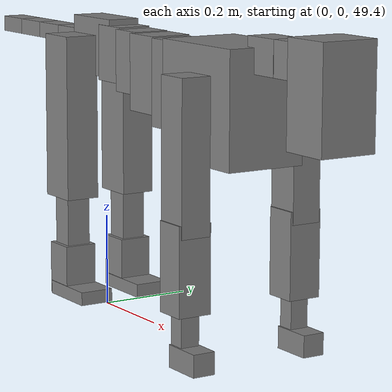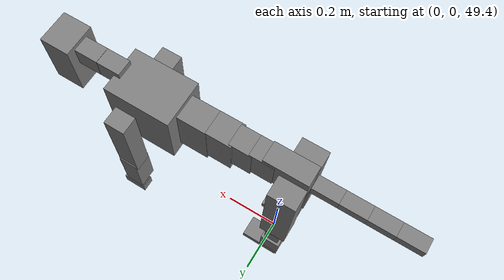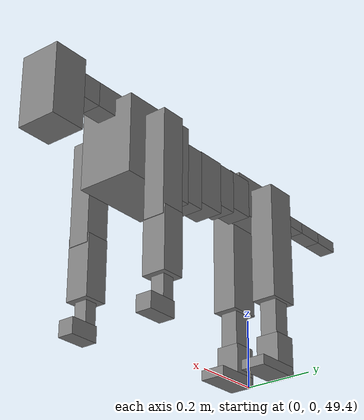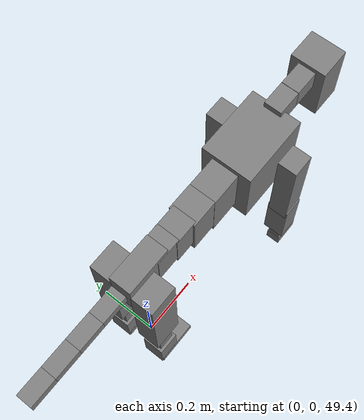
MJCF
<mujoco model="dog">

    <default>
        <joint armature="0.02" stiffness="1" damping="0.2" limited="true"/>
        <geom condim="3" friction="1 0.05 0.05" margin="0.01"/>
        <motor ctrllimited="true" ctrlrange="-1.0 1.0" forcelimited="true" gear="50"/>
    </default>

    <compiler inertiafromgeom="true" angle="radian"/>

    <option timestep="0.016" iterations="50" tolerance="1e-10" solver="Newton" jacobian="dense" cone="pyramidal"/>

    <size nconmax="20000" njmax="60000" nstack="5000000"/>
    <visual>
        <map force="0.1" zfar="30"/>
        <rgba haze="0.15 0.25 0.35 1"/>
        <quality shadowsize="2048"/>
        <global offwidth="800" offheight="800"/>
    </visual>

    <asset>
        <texture type="skybox" builtin="gradient" rgb1="0.3 0.5 0.7" rgb2="0 0 0" width="512" height="512"/>
        <texture name="texplane" type="2d" builtin="checker" rgb1=".2 .3 .4" rgb2=".1 0.15 0.2" width="512" height="512"
                 mark="cross" markrgb=".8 .8 .8"/>
        <texture name="texgeom" type="cube" builtin="flat" mark="cross" width="127" height="1278" rgb1="0.8 0.6 0.4"
                 rgb2="0.8 0.6 0.4" markrgb="1 1 1" random="0.01"/>

        <material name="matplane" reflectance="0.3" texture="texplane" texrepeat="1 1" texuniform="true"/>
        <material name="matgeom" texture="texgeom" texuniform="true" rgba="0.8 0.6 .4 1"/>
    </asset>

    <worldbody>
        <geom name="floor" pos="0 0 0" size="0 0 .25" type="plane" material="matplane" condim="3"/>

        <light directional="false" diffuse=".2 .2 .2" specular="0 0 0" pos="0 0 5" dir="0 0 -1" castshadow="false"/>
        <light mode="targetbodycom" target="torso" directional="false" diffuse=".8 .8 .8" specular="0.3 0.3 0.3"
               pos="0 0 4.0" dir="0 0 -1"/>

        <body name="root" pos="0 0 50">
            <freejoint name="root_1"/>
            <geom type="box" pos="0 0 -0.02" size="0.0774  0.0358  0.063" density="2030"/>

            <body name="spine1" pos="0.054 0 0">
                <joint name="spine1_y" axis="0 1 0" range="0 0.7" limited="true"/>
                <geom type="box" pos="0.02375 0 -0.03" size="0.04375  0.0375  0.05985" density="2030"/>

                <body name="spine2" pos="0.0612 0 0">
                    <joint name="spine2_y" axis="0 1 0" range="-0.15 0.15" limited="true"/>
                    <geom type="box" pos="0.03555  0  -0.04" size="0.04055  0.039  0.06615" density="2030"/>

                    <body name="spine3" pos="0.0730 0 0">
                        <joint name="spine3_y" axis="0 1 0" range="-0.15 0.15" limited="true"/>
                        <geom type="box" pos="0.03555  0  -0.057" size="0.04555  0.0445  0.081" density="2030"/>

                        <body name="spine4" pos="0.0780 0 0">
                            <joint name="spine4_y" axis="0 1 0" range="-0.15 0.15" limited="true"/>
                            <geom type="box" pos="0.05265  0  -0.07" size="0.05265  0.045  0.09135" density="2030"/>

                            <body name="torso" pos="0.1082 0 0">
                                <joint name="torso_y" axis="0 1 0" range="-0.15 0.15" limited="true"/>
                                <geom type="box" pos="0.11925  0  -0.085" size="0.11925  0.085  0.11745"
                                      density="2030"/>

                                <body name="neck1" pos="0.2160  0   0.0180">
                                    <joint name="neck1_y" axis="0 1 0" range="-1.2  -1" limited="true"/>
                                    <geom type="box" pos="0.0423  0  0" size="0.0423  0.03  0.036" density="2325"/>

                                    <body name="neck2" pos="0.0853  0  0">
                                        <joint name="neck2_y" axis="0 1 0" range="0.1  0" limited="true"/>
                                        <geom type="box" pos="0.0423  0  0" size="0.0423  0.03  0.036" density="2325"/>

                                        <body name="head" pos="0.0853  0  0">
                                            <joint name="head_y" axis="0 1 0" range="-0.3  -0.2" limited="true"/>
                                            <geom type="box" pos="0.0531  0  -0.055" size="0.0531  0.06  0.1044"
                                                  density="4030"/>

                                        </body>
                                    </body>
                                </body>

                                <body name="front_shoulder" pos="0.156  0   -0.0480">
                                    <joint name="front_shoulder_y" axis="0 1 0" range="-1 1.5" limited="true"/>
                                    <geom type="box" pos="0 0.13 -0.1282" size="0.0374  0.0320  0.1549" density="1158"/>
                                    <geom type="box" pos="0 -0.13 -0.1282" size="0.0374  0.0320  0.1549"
                                          density="1158"/>

                                    <body name="front_elbow" pos="0  0  -0.2564">
                                        <joint name="front_elbow_y" axis="0 1 0" range="-2 0" limited="true"/>
                                        <geom type="box" pos="0 0.13 -0.0906" size="0.0350  0.0358  0.0906"
                                              density="1081"/>
                                        <geom type="box" pos="0 -0.13 -0.0906" size="0.0350  0.0358  0.0906"
                                              density="1081"/>

                                        <body name="front_wrist" pos="0  0  -0.1811">
                                            <joint name="front_wrist_y" axis="0 1 0" range="-0.2 0" limited="true"/>
                                            <geom type="box" pos="0 0.13 -0.0397" size="0.0182  0.0202  0.0529"
                                                  density="1664"/>
                                            <geom type="box" pos="0 -0.13 -0.0397" size="0.0182  0.0202  0.0529"
                                                  density="1664"/>

                                            <body name="front_finger_end" pos="0  0  -0.0794">
                                                <joint name="front_finger_y" axis="0 1 0" range="-0.4 1"
                                                       limited="true"/>
                                                <geom type="box" pos="0.0241  0.13  -0.0081"
                                                      size="0.0442  0.0241  0.0231" density="1515"/>
                                                <geom type="box" pos="0.0241  -0.13  -0.0081"
                                                      size="0.0442  0.0241  0.0231" density="1515"/>

                                            </body>

                                        </body>
                                    </body>
                                </body>

                            </body>
                        </body>
                    </body>
                </body>
            </body>

            <body name="back_hip" pos="-0.03 0 -0.018">
                <joint name="back_hip_y" axis="0 1 0" range="-1.5 0.3" limited="true"/>
                <geom type="box" pos="0 0.07 -0.1559" size="0.0478  0.0375  0.1787" density="1154"/>
                <geom type="box" pos="0 -0.07 -0.1559" size="0.0478  0.0375  0.1787" density="1154"/>

                <body name="back_knee" pos="0  0  -0.3117">
                    <joint name="back_knee_y" axis="0 1 0" range="0 2.8" limited="true"/>
                    <geom type="box" pos="0 0.07 -0.0700" size="0.0271  0.0267  0.0856" density="1227"/>
                    <geom type="box" pos="0 -0.07 -0.0700" size="0.0271  0.0267  0.0856" density="1227"/>

                    <body name="back_ankle" pos="0  0  -0.1400">
                        <joint name="back_ankle_y" axis="0 1 0" range="-2.2 0" limited="true"/>
                        <geom type="box" pos="0 0.07 -0.0458" size="0.0360  0.0360  0.0570" density="1284"/>
                        <geom type="box" pos="0 -0.07 -0.0458" size="0.0360  0.0360  0.0570" density="1284"/>

                        <body name="back_toe_end" pos="0  0  -0.0915">
                            <joint name="back_toe_y" axis="0 1 0" range="-0.4 1" limited="true"/>
                            <geom type="box" pos="0.0376  0.07  0.0004" size="0.0690  0.0376  0.0146" density="1515"/>
                            <geom type="box" pos="0.0376  -0.07  0.0004" size="0.0690  0.0376  0.0146" density="1515"/>

                        </body>
                    </body>
                </body>
            </body>

            <body name="tail1" pos="-0.074 0 -0.006">
                <joint name="tail1_y" axis="0 1 0" range="-0.2 0.2" limited="true"/>
                <geom type="box" pos="-0.0536  0  0" size="0.045  0.025  0.0175" density="1587"/>

                <body name="tail2" pos="-0.09 0 0">
                    <joint name="tail2_y" axis="0 1 0" range="-0.2 0.2" limited="true"/>
                    <geom type="box" pos="-0.0536  0  0" size="0.045  0.025  0.0175" density="1587"/>

                    <body name="tail3" pos="-0.09 0 0">
                        <joint name="tail3_y" axis="0 1 0" range="-0.2 0.2" limited="true"/>
                        <geom type="box" pos="-0.0536  0  0" size="0.045  0.025  0.0175" density="1587"/>

                        <body name="tail4" pos="-0.09 0 0">
                            <joint name="tail4_y" axis="0 1 0" range="-0.2 0.2" limited="true"/>
                            <geom type="box" pos="-0.0536  0  0" size="0.045  0.025  0.0175" density="1587"/>

                        </body>
                    </body>
                </body>
            </body>
        </body>
    </worldbody>

    <actuator>
        <motor joint="spine1_y" forcerange="-150 150     "/>
        <motor joint="spine2_y" forcerange="-150 150     "/>
        <motor joint="spine3_y" forcerange="-150 150     "/>
        <motor joint="spine4_y" forcerange="-150 150     "/>
        <motor joint="torso_y" forcerange="-150 150     "/>
        <motor joint="neck1_y" forcerange="-100 100       "/>
        <motor joint="neck2_y" forcerange="-100 100       "/>
        <motor joint="head_y" forcerange="-150 150       "/>
        <motor joint="front_shoulder_y" forcerange="-159.77 153.50"/>
        <motor joint="front_elbow_y" forcerange="-181.90 178.41"/>
        <motor joint="front_wrist_y" forcerange="-84.05 77.54"/>
        <motor joint="front_finger_y" forcerange="-51.18 37.41"/>
        <motor joint="back_hip_y" forcerange="-323.44 376.72"/>
        <motor joint="back_knee_y" forcerange="-366.47 221.65"/>
        <motor joint="back_angle_y" forcerange="-227.75 248.91"/>
        <motor joint="back_toe_y" forcerange="-130.21 90.90"/>
        <motor joint="tail1_y" forcerange="-50 50     "/>
        <motor joint="tail2_y" forcerange="-50 50     "/>
        <motor joint="tail3_y" forcerange="-50 50     "/>
        <motor joint="tail4_y" forcerange="-50 50     "/>
    </actuator>
</mujoco>
